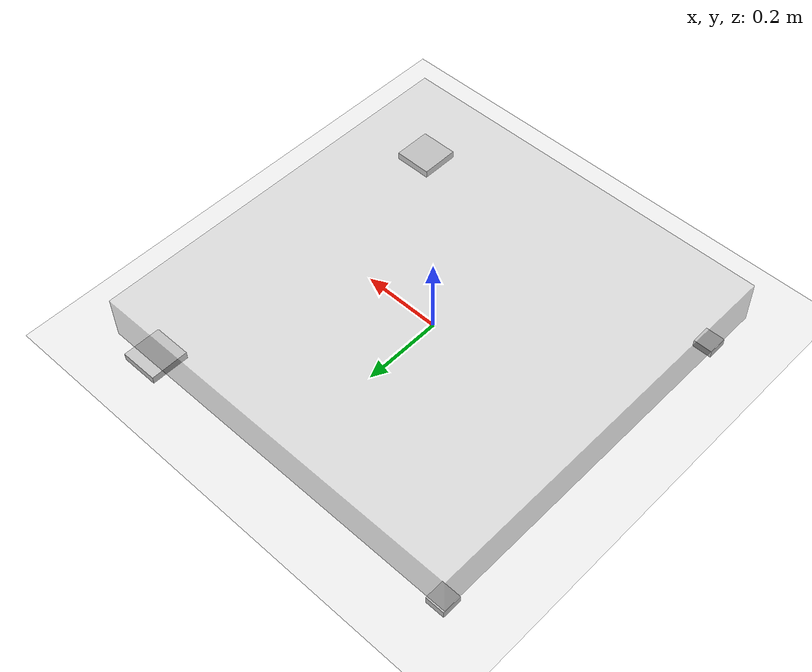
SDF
<?xml version="1.0" ?>
<sdf version="1.4">
  <world name="default">
    <include>
      <uri>model://ground_plane</uri>
    </include>
    <include>
      <uri>model://sun</uri>
    </include>
    <model name="pressure_sensor_test">
      <link name="base">
        <pose>0 0 0.012  0 0 0</pose>

        <collision name="base_collision">
          <geometry>
            <box>
              <size>1 1 0.2</size>
            </box>
          </geometry>
        </collision>
        <visual name="base_visual">
          <geometry>
            <box>
              <size>1 1 0.2</size>
            </box>
          </geometry>
          <transparency>0.5</transparency>
        </visual>

        <collision name="pressure_pad_1">
          <pose>0.45 0.45 -0.1  0 0 0</pose>
          <geometry>
            <box>
              <size>0.1 0.1 0.02</size>
            </box>
          </geometry>
          <surface>
            <contact>
              <ode>
                <kp>100000</kp>
                <kd>1</kd>
              </ode>
            </contact>
            <friction>
              <ode>
                <mu>1</mu>
                <mu2>1</mu2>
              </ode>
            </friction>
          </surface>
        </collision>
        <collision name="pressure_pad_2">
          <pose>0.45 -0.45 -0.1  0 0 0</pose>
          <geometry>
            <box>
              <size>0.1 0.1 0.02</size>
            </box>
          </geometry>
          <surface>
            <contact>
              <ode>
                <kp>100000</kp>
                <kd>1</kd>
              </ode>
            </contact>
            <friction>
              <ode>
                <mu>1</mu>
                <mu2>1</mu2>
              </ode>
            </friction>
          </surface>
        </collision>
        <collision name="pressure_pad_3">
          <pose>-0.45 0.45 -0.1  0 0 0</pose>
          <geometry>
            <box>
              <size>0.05 0.05 0.02</size>
            </box>
          </geometry>
          <surface>
            <contact>
              <ode>
                <kp>100000</kp>
                <kd>1</kd>
              </ode>
            </contact>
            <friction>
              <ode>
                <mu>1</mu>
                <mu2>1</mu2>
              </ode>
            </friction>
          </surface>
        </collision>
        <collision name="pressure_pad_4">
          <pose>-0.45 -0.45 -0.1  0 0 0</pose>
          <geometry>
            <box>
              <size>0.05 0.05 0.02</size>
            </box>
          </geometry>
          <surface>
            <contact>
              <ode>
                <kp>100000</kp>
                <kd>1</kd>
              </ode>
            </contact>
            <friction>
              <ode>
                <mu>1</mu>
                <mu2>1</mu2>
              </ode>
            </friction>
          </surface>
        </collision>

        <visual name="pressure_pad_1">
          <pose>0.45 0.45 -0.1  0 0 0</pose>
          <geometry>
            <box>
              <size>0.1 0.1 0.02</size>
            </box>
          </geometry>
        </visual>
        <visual name="pressure_pad_2">
          <pose>0.45 -0.45 -0.1  0 0 0</pose>
          <geometry>
            <box>
              <size>0.1 0.1 0.02</size>
            </box>
          </geometry>
        </visual>
        <visual name="pressure_pad_3">
          <pose>-0.45 0.45 -0.1  0 0 0</pose>
          <geometry>
            <box>
              <size>0.05 0.05 0.02</size>
            </box>
          </geometry>
        </visual>
        <visual name="pressure_pad_4">
          <pose>-0.45 -0.45 -0.1  0 0 0</pose>
          <geometry>
            <box>
              <size>0.05 0.05 0.02</size>
            </box>
          </geometry>
        </visual>

        <sensor name="my_contact" type="contact">
          <contact>
            <collision>pressure_pad_1</collision>
            <collision>pressure_pad_2</collision>
            <collision>pressure_pad_3</collision>
            <collision>pressure_pad_4</collision>
          </contact>
          <plugin name="my_plugin" filename="libPressurePlugin.so" />
        </sensor>
      </link>
    </model>
  </world>
</sdf>
